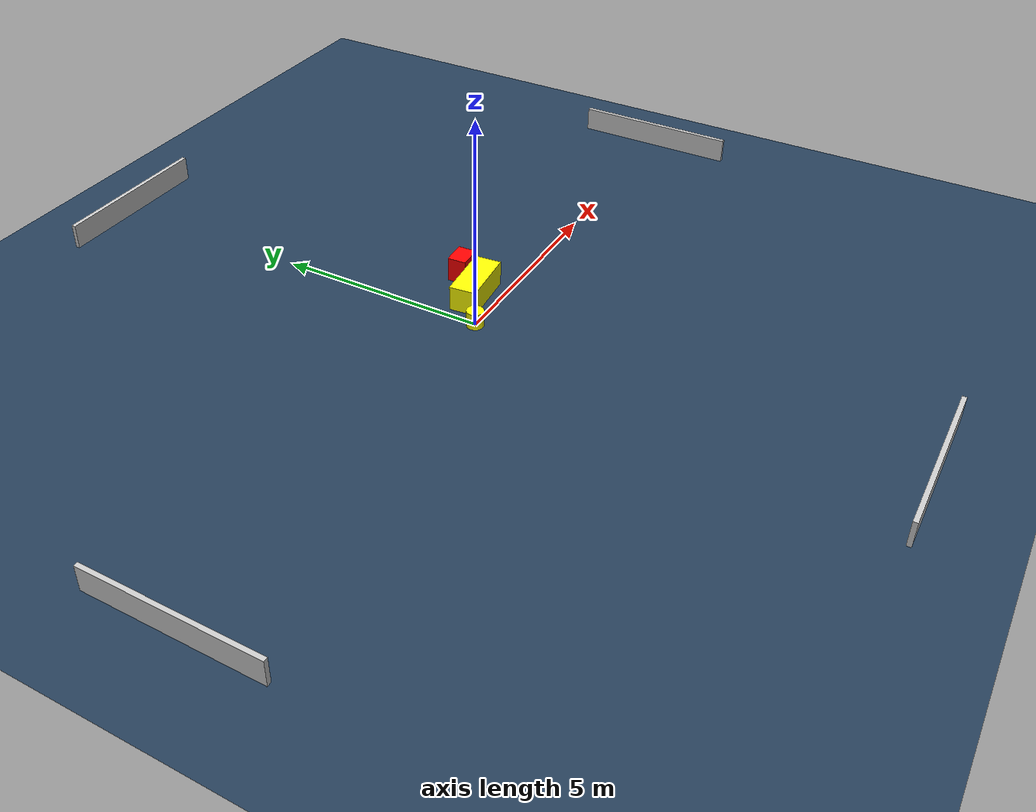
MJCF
<?xml version="1.0" ?>
<mujoco model="generated_environment">
  <option timestep="0.01" integrator="RK4" cone="elliptic"/>
  <default>
    <geom density="1"/>
  </default>
  <asset>
    <texture builtin="gradient" height="3072" name="skybox" rgb1="0.3 0.5 0.7" rgb2="0 0 0" type="skybox" width="512"/>
    <texture builtin="checker" height="300" name="groundplane" rgb1="0.2 0.3 0.4" rgb2="0.1 0.2 0.3" type="2d" width="300"/>
    <material name="groundplane" reflectance="0.2" texrepeat="5 5" texture="groundplane"/>
  </asset>
  <worldbody>
    <light dir="0 0 -1" directional="true" pos="0 0 1.5"/>
    <geom condim="3" friction="0.5 0.005 0.001" material="groundplane" name="floor" pos="0 0 0" size="0 0 0.05" type="plane"/>
    <body name="walls">
      <geom name="wall_1" condim="4" pos="-10.0 0.0 0.3" rgba="0.800000011920929 0.800000011920929 0.800000011920929 1.0" size="0.05 2.0 0.3" type="box"/>
      <geom name="wall_2" condim="4" pos="10.0 0.0 0.3" rgba="0.800000011920929 0.800000011920929 0.800000011920929 1.0" size="0.05 2.0 0.3" type="box"/>
      <geom name="wall_3" condim="4" pos="0.0 -10.0 0.3" rgba="0.800000011920929 0.800000011920929 0.800000011920929 1.0" size="2.0 0.05 0.3" type="box"/>
      <geom name="wall_4" condim="4" pos="0.0 10.0 0.3" rgba="0.800000011920929 0.800000011920929 0.800000011920929 1.0" size="2.0 0.05 0.3" type="box"/>
    </body>
    <body name="robot">
      <joint name="joint_x" type="slide" pos="0 0 0" axis="1 0 0"/>
      <joint name="joint_y" type="slide" pos="0 0 0" axis="0 1 0"/>
      <geom name="robot" type="cylinder" pos="0.0 0.0 0.2" size="0.2 0.2 0.0" mass="5.0" friction="1.0 0.005 0.0001" condim="4" rgba="1.0 1.0 0.0 1.0"/>
    </body>
    <body name="obstacle_1_movable">
      <geom name="obstacle_1_movable" condim="4" pos="0.9866970348251186 0.5574876411964673 0.3" euler="0 0 5.4639094449078" friction="0.0 0.005 0.001" rgba="1.0 1.0 0.0 1.0" size="0.7117675891929021 0.3174326526524152 0.3" type="box" mass="0.1"/>
      <joint type="free"/>
    </body>
    <body name="obstacle_2_static">
      <geom name="obstacle_2_static" condim="4" pos="1.5538479255364421 1.239754445653042 0.3" euler="0 0 93.36922960999973" friction="0.0 0.005 0.001" rgba="1.0 0.0 0.0 1.0" size="0.22222694310033084 0.2853028498617247 0.3" type="box"/>
    </body>
  </worldbody>
  <actuator>
    <motor name="actuator_x" joint="joint_x" gear="1" ctrlrange="-1 1"/>
    <motor name="actuator_y" joint="joint_y" gear="1" ctrlrange="-1 1"/>
  </actuator>
</mujoco>
